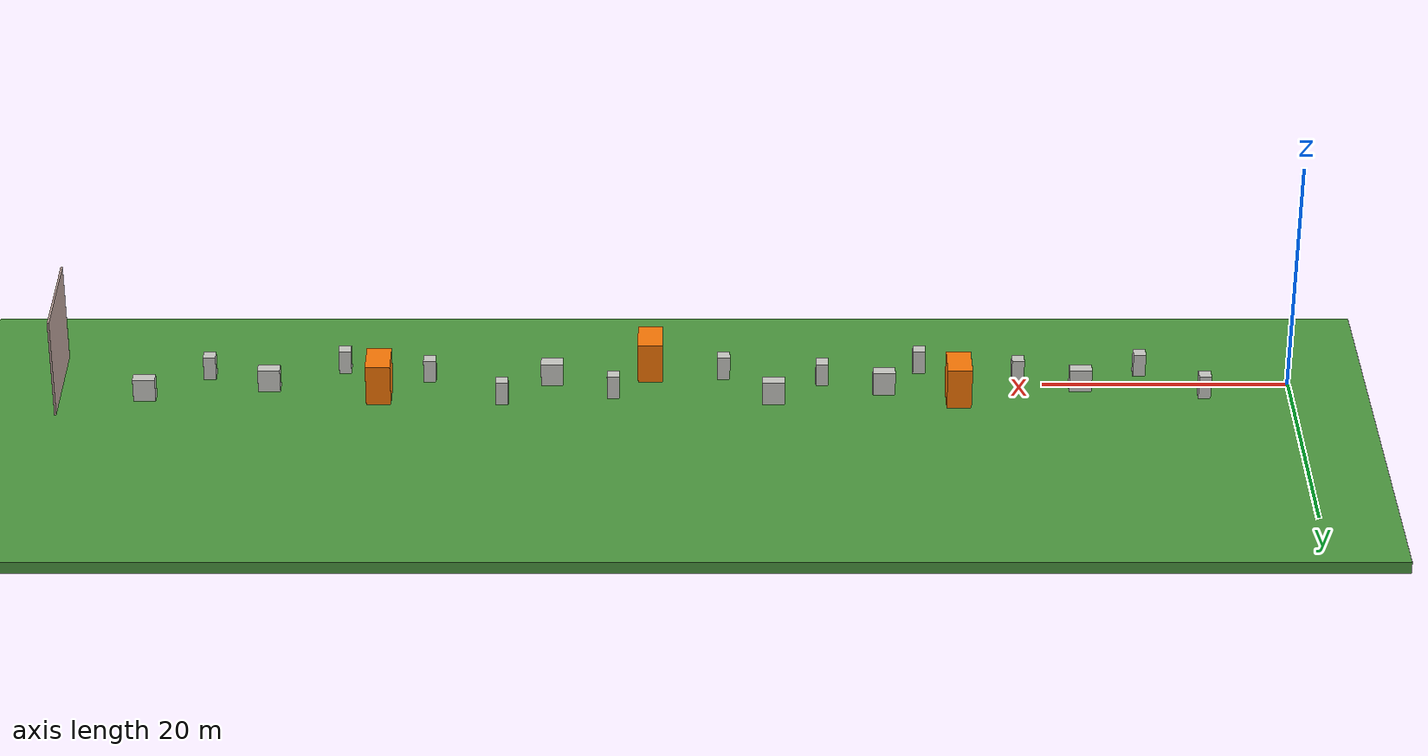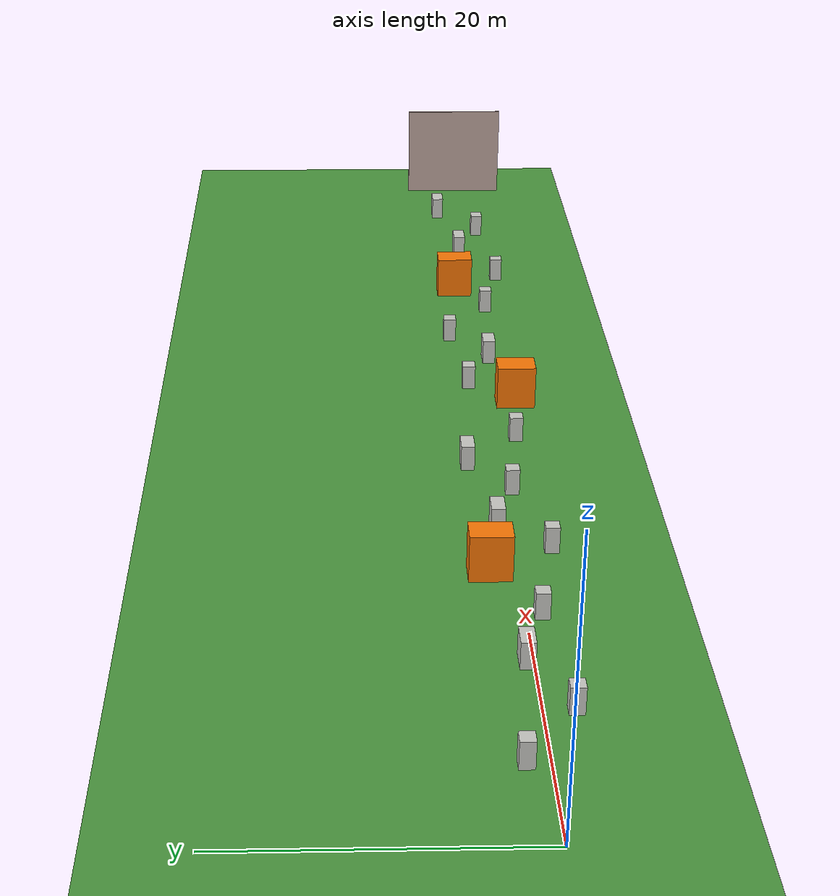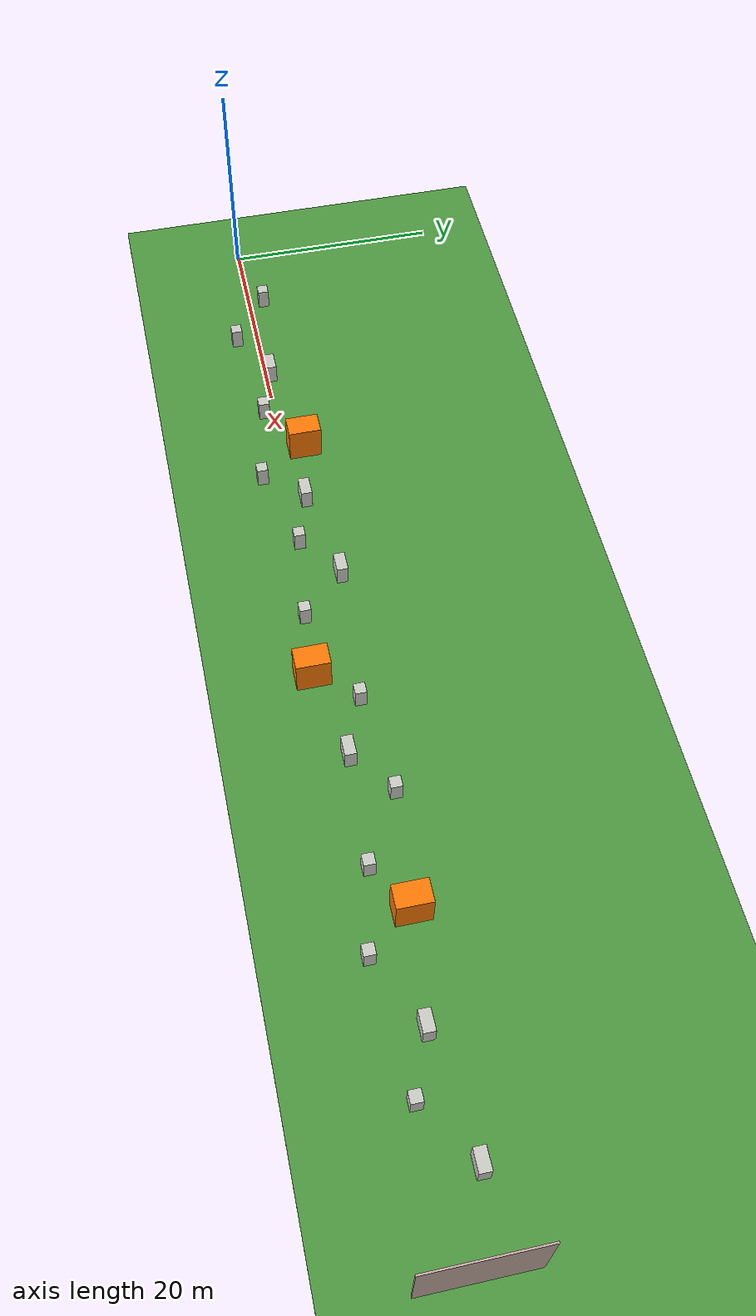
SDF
<sdf version="1.7">
 <world name="default">
  <light name="sun" type="directional">
   <pose>50 0 10 0 -0 0</pose>
   <diffuse>0.8 0.8 0.8 1</diffuse>
   <specular>0.2 0.2 0.2 1</specular>
   <attenuation>
    <range>1000</range>
    <constant>0.9</constant>
    <linear>0.01</linear>
    <quadratic>0.001</quadratic>
   </attenuation>
   <direction>-0.5 0.1 -0.9</direction>
  </light>
  <gravity>0 0 -9.8</gravity>
  <magnetic_field>6e-06 2.3e-05 -4.2e-05</magnetic_field>
  <atmosphere type="adiabatic"/>
  <physics type="ode">
   <max_step_size>0.001</max_step_size>
   <real_time_factor>1</real_time_factor>
   <real_time_update_rate>1000</real_time_update_rate>
  </physics>
  <model name="ground_plane">
   <static>1</static>
   <link name="ground_link">
    <collision name="ground_collision">
     <pose>50 0 -0.5 0 0 0</pose>
     <geometry><box><size>400 400 1.0</size></box></geometry>
     <max_contacts>100</max_contacts>
     <surface>
      <contact><ode><soft_cfm>0</soft_cfm><soft_erp>0.8</soft_erp></ode></contact>
      <bounce><restitution_coefficient>0</restitution_coefficient></bounce>
      <friction><ode><mu>50</mu><mu2>50</mu2></ode></friction>
     </surface>
    </collision>
    <visual name="ground_visual">
     <pose>50 0 -0.5 0 0 0</pose>
     <geometry><box><size>400 400 1.0</size></box></geometry>
     <material>
      <script><uri>file://media/materials/scripts/gazebo.material</uri><name>Gazebo/Grass</name></script>
     </material>
    </visual>
   </link>
  </model>
  <scene><ambient>0.4 0.4 0.4 1</ambient><background>0.7 0.7 0.7 1</background><shadows>1</shadows></scene>
  <model name="tunnel_end_wall">
   <pose>100 0 0 0 0 0</pose>
   <link name="Wall_0">
    <collision name="Wall_0_Collision">
     <geometry><box><size>9.15 0.15 8.5</size></box></geometry>
     <pose>0 0 4.25 0 0 0</pose>
     <max_contacts>50</max_contacts>
     <surface>
      <contact><ode><soft_cfm>0</soft_cfm><soft_erp>0.2</soft_erp></ode></contact>
      <bounce><restitution_coefficient>0</restitution_coefficient></bounce>
      <friction><ode><mu>5</mu><mu2>5</mu2></ode></friction>
     </surface>
    </collision>
    <visual name="Wall_0_Visual">
     <pose>0 0 4.25 0 0 0</pose>
     <geometry><box><size>9.15 0.15 8.5</size></box></geometry>
     <material>
      <script><uri>file://media/materials/scripts/gazebo.material</uri><name>Gazebo/Grey</name></script>
      <ambient>0.76 0.66 0.63 1</ambient>
     </material>
    </visual>
    <pose>0 0 0 0 0 1.5708</pose>
   </link>
   <static>1</static>
  </model>
  <model name="sbox_01">
   <pose>7.0 1.5 0 0 0 0</pose>
   <link name="Wall_0">
    <collision name="c">
     <geometry><box><size>1.0 1.0 2.0</size></box></geometry>
     <pose>0 0 1 0 0 0</pose>
    </collision>
    <visual name="v">
     <pose>0 0 1 0 0 0</pose>
     <geometry><box><size>1.0 1.0 2.0</size></box></geometry>
     <material>
      <script><uri>file://media/materials/scripts/gazebo.material</uri><name>Gazebo/CeilingTiled</name></script>
      <ambient>0.92 0.81 0.62 1</ambient>
     </material>
    </visual>
   </link>
   <static>1</static>
  </model>
  <model name="sbox_02">
   <pose>12.0 -2.0 0 0 0 0</pose>
   <link name="Wall_0">
    <collision name="c">
     <geometry><box><size>1.0 1.0 2.0</size></box></geometry>
     <pose>0 0 1 0 0 0</pose>
    </collision>
    <visual name="v">
     <pose>0 0 1 0 0 0</pose>
     <geometry><box><size>1.0 1.0 2.0</size></box></geometry>
     <material>
      <script><uri>file://media/materials/scripts/gazebo.material</uri><name>Gazebo/CeilingTiled</name></script>
      <ambient>0.92 0.81 0.62 1</ambient>
     </material>
    </visual>
   </link>
   <static>1</static>
  </model>
  <model name="lbox_03">
   <pose>17.0 0.5 0 0 0 0</pose>
   <link name="Wall_0">
    <collision name="c">
     <geometry><box><size>1.8 1.0 2.0</size></box></geometry>
     <pose>0 0 1 0 0 0</pose>
    </collision>
    <visual name="v">
     <pose>0 0 1 0 0 0</pose>
     <geometry><box><size>1.8 1.0 2.0</size></box></geometry>
     <material>
      <script><uri>file://media/materials/scripts/gazebo.material</uri><name>Gazebo/CeilingTiled</name></script>
      <ambient>0.92 0.81 0.62 1</ambient>
     </material>
    </visual>
   </link>
   <static>1</static>
  </model>
  <model name="sbox_04">
   <pose>22.0 -1.0 0 0 0 0</pose>
   <link name="Wall_0">
    <collision name="c">
     <geometry><box><size>1.0 1.0 2.0</size></box></geometry>
     <pose>0 0 1 0 0 0</pose>
    </collision>
    <visual name="v">
     <pose>0 0 1 0 0 0</pose>
     <geometry><box><size>1.0 1.0 2.0</size></box></geometry>
     <material>
      <script><uri>file://media/materials/scripts/gazebo.material</uri><name>Gazebo/CeilingTiled</name></script>
      <ambient>0.92 0.81 0.62 1</ambient>
     </material>
    </visual>
   </link>
   <static>1</static>
  </model>
  <model name="boulder_05">
   <pose>27.0 2.0 0 0 0 0</pose>
   <link name="Wall_0">
    <collision name="c">
     <geometry><box><size>3.0 2.0 3.5</size></box></geometry>
     <pose>0 0 1.75 0 0 0</pose>
    </collision>
    <visual name="v">
     <pose>0 0 1.75 0 0 0</pose>
     <geometry><box><size>3.0 2.0 3.5</size></box></geometry>
     <material>
      <script><uri>file://media/materials/scripts/gazebo.material</uri><name>Gazebo/Grey</name></script>
      <ambient>0.996 0.475 0.02 1</ambient>
     </material>
    </visual>
    <pose>0 0 0 0 0 1.5708</pose>
   </link>
   <static>1</static>
  </model>
  <model name="sbox_06">
   <pose>30.0 -2.5 0 0 0 0</pose>
   <link name="Wall_0">
    <collision name="c">
     <geometry><box><size>1.0 1.0 2.0</size></box></geometry>
     <pose>0 0 1 0 0 0</pose>
    </collision>
    <visual name="v">
     <pose>0 0 1 0 0 0</pose>
     <geometry><box><size>1.0 1.0 2.0</size></box></geometry>
     <material>
      <script><uri>file://media/materials/scripts/gazebo.material</uri><name>Gazebo/CeilingTiled</name></script>
      <ambient>0.92 0.81 0.62 1</ambient>
     </material>
    </visual>
   </link>
   <static>1</static>
  </model>
  <model name="lbox_07">
   <pose>33.0 1.0 0 0 0 0</pose>
   <link name="Wall_0">
    <collision name="c">
     <geometry><box><size>1.8 1.0 2.0</size></box></geometry>
     <pose>0 0 1 0 0 0</pose>
    </collision>
    <visual name="v">
     <pose>0 0 1 0 0 0</pose>
     <geometry><box><size>1.8 1.0 2.0</size></box></geometry>
     <material>
      <script><uri>file://media/materials/scripts/gazebo.material</uri><name>Gazebo/CeilingTiled</name></script>
      <ambient>0.92 0.81 0.62 1</ambient>
     </material>
    </visual>
   </link>
   <static>1</static>
  </model>
  <model name="sbox_08">
   <pose>38.0 -0.5 0 0 0 0</pose>
   <link name="Wall_0">
    <collision name="c">
     <geometry><box><size>1.0 1.0 2.0</size></box></geometry>
     <pose>0 0 1 0 0 0</pose>
    </collision>
    <visual name="v">
     <pose>0 0 1 0 0 0</pose>
     <geometry><box><size>1.0 1.0 2.0</size></box></geometry>
     <material>
      <script><uri>file://media/materials/scripts/gazebo.material</uri><name>Gazebo/CeilingTiled</name></script>
      <ambient>0.92 0.81 0.62 1</ambient>
     </material>
    </visual>
   </link>
   <static>1</static>
  </model>
  <model name="lbox_09">
   <pose>42.0 2.5 0 0 0 0</pose>
   <link name="Wall_0">
    <collision name="c">
     <geometry><box><size>1.8 1.0 2.0</size></box></geometry>
     <pose>0 0 1 0 0 0</pose>
    </collision>
    <visual name="v">
     <pose>0 0 1 0 0 0</pose>
     <geometry><box><size>1.8 1.0 2.0</size></box></geometry>
     <material>
      <script><uri>file://media/materials/scripts/gazebo.material</uri><name>Gazebo/CeilingTiled</name></script>
      <ambient>0.92 0.81 0.62 1</ambient>
     </material>
    </visual>
   </link>
   <static>1</static>
  </model>
  <model name="sbox_10">
   <pose>46.0 -1.5 0 0 0 0</pose>
   <link name="Wall_0">
    <collision name="c">
     <geometry><box><size>1.0 1.0 2.0</size></box></geometry>
     <pose>0 0 1 0 0 0</pose>
    </collision>
    <visual name="v">
     <pose>0 0 1 0 0 0</pose>
     <geometry><box><size>1.0 1.0 2.0</size></box></geometry>
     <material>
      <script><uri>file://media/materials/scripts/gazebo.material</uri><name>Gazebo/CeilingTiled</name></script>
      <ambient>0.92 0.81 0.62 1</ambient>
     </material>
    </visual>
   </link>
   <static>1</static>
  </model>
  <model name="boulder_11">
   <pose>52.0 -2.0 0 0 0 0</pose>
   <link name="Wall_0">
    <collision name="c">
     <geometry><box><size>3.0 2.0 3.5</size></box></geometry>
     <pose>0 0 1.75 0 0 0</pose>
    </collision>
    <visual name="v">
     <pose>0 0 1.75 0 0 0</pose>
     <geometry><box><size>3.0 2.0 3.5</size></box></geometry>
     <material>
      <script><uri>file://media/materials/scripts/gazebo.material</uri><name>Gazebo/Grey</name></script>
      <ambient>0.996 0.475 0.02 1</ambient>
     </material>
    </visual>
    <pose>0 0 0 0 0 1.5708</pose>
   </link>
   <static>1</static>
  </model>
  <model name="sbox_12">
   <pose>55.0 1.5 0 0 0 0</pose>
   <link name="Wall_0">
    <collision name="c">
     <geometry><box><size>1.0 1.0 2.0</size></box></geometry>
     <pose>0 0 1 0 0 0</pose>
    </collision>
    <visual name="v">
     <pose>0 0 1 0 0 0</pose>
     <geometry><box><size>1.0 1.0 2.0</size></box></geometry>
     <material>
      <script><uri>file://media/materials/scripts/gazebo.material</uri><name>Gazebo/CeilingTiled</name></script>
      <ambient>0.92 0.81 0.62 1</ambient>
     </material>
    </visual>
   </link>
   <static>1</static>
  </model>
  <model name="lbox_13">
   <pose>60.0 -0.5 0 0 0 0</pose>
   <link name="Wall_0">
    <collision name="c">
     <geometry><box><size>1.8 1.0 2.0</size></box></geometry>
     <pose>0 0 1 0 0 0</pose>
    </collision>
    <visual name="v">
     <pose>0 0 1 0 0 0</pose>
     <geometry><box><size>1.8 1.0 2.0</size></box></geometry>
     <material>
      <script><uri>file://media/materials/scripts/gazebo.material</uri><name>Gazebo/CeilingTiled</name></script>
      <ambient>0.92 0.81 0.62 1</ambient>
     </material>
    </visual>
   </link>
   <static>1</static>
  </model>
  <model name="sbox_14">
   <pose>64.0 2.5 0 0 0 0</pose>
   <link name="Wall_0">
    <collision name="c">
     <geometry><box><size>1.0 1.0 2.0</size></box></geometry>
     <pose>0 0 1 0 0 0</pose>
    </collision>
    <visual name="v">
     <pose>0 0 1 0 0 0</pose>
     <geometry><box><size>1.0 1.0 2.0</size></box></geometry>
     <material>
      <script><uri>file://media/materials/scripts/gazebo.material</uri><name>Gazebo/CeilingTiled</name></script>
      <ambient>0.92 0.81 0.62 1</ambient>
     </material>
    </visual>
   </link>
   <static>1</static>
  </model>
  <model name="sbox_15">
   <pose>70.0 -1.0 0 0 0 0</pose>
   <link name="Wall_0">
    <collision name="c">
     <geometry><box><size>1.0 1.0 2.0</size></box></geometry>
     <pose>0 0 1 0 0 0</pose>
    </collision>
    <visual name="v">
     <pose>0 0 1 0 0 0</pose>
     <geometry><box><size>1.0 1.0 2.0</size></box></geometry>
     <material>
      <script><uri>file://media/materials/scripts/gazebo.material</uri><name>Gazebo/CeilingTiled</name></script>
      <ambient>0.92 0.81 0.62 1</ambient>
     </material>
    </visual>
   </link>
   <static>1</static>
  </model>
  <model name="boulder_16">
   <pose>74.0 1.5 0 0 0 0</pose>
   <link name="Wall_0">
    <collision name="c">
     <geometry><box><size>3.0 2.0 3.5</size></box></geometry>
     <pose>0 0 1.75 0 0 0</pose>
    </collision>
    <visual name="v">
     <pose>0 0 1.75 0 0 0</pose>
     <geometry><box><size>3.0 2.0 3.5</size></box></geometry>
     <material>
      <script><uri>file://media/materials/scripts/gazebo.material</uri><name>Gazebo/Grey</name></script>
      <ambient>0.996 0.475 0.02 1</ambient>
     </material>
    </visual>
    <pose>0 0 0 0 0 1.5708</pose>
   </link>
   <static>1</static>
  </model>
  <model name="sbox_17">
   <pose>77.0 -2.5 0 0 0 0</pose>
   <link name="Wall_0">
    <collision name="c">
     <geometry><box><size>1.0 1.0 2.0</size></box></geometry>
     <pose>0 0 1 0 0 0</pose>
    </collision>
    <visual name="v">
     <pose>0 0 1 0 0 0</pose>
     <geometry><box><size>1.0 1.0 2.0</size></box></geometry>
     <material>
      <script><uri>file://media/materials/scripts/gazebo.material</uri><name>Gazebo/CeilingTiled</name></script>
      <ambient>0.92 0.81 0.62 1</ambient>
     </material>
    </visual>
   </link>
   <static>1</static>
  </model>
  <model name="lbox_18">
   <pose>83.0 0.5 0 0 0 0</pose>
   <link name="Wall_0">
    <collision name="c">
     <geometry><box><size>1.8 1.0 2.0</size></box></geometry>
     <pose>0 0 1 0 0 0</pose>
    </collision>
    <visual name="v">
     <pose>0 0 1 0 0 0</pose>
     <geometry><box><size>1.8 1.0 2.0</size></box></geometry>
     <material>
      <script><uri>file://media/materials/scripts/gazebo.material</uri><name>Gazebo/CeilingTiled</name></script>
      <ambient>0.92 0.81 0.62 1</ambient>
     </material>
    </visual>
   </link>
   <static>1</static>
  </model>
  <model name="sbox_19">
   <pose>88.0 -1.5 0 0 0 0</pose>
   <link name="Wall_0">
    <collision name="c">
     <geometry><box><size>1.0 1.0 2.0</size></box></geometry>
     <pose>0 0 1 0 0 0</pose>
    </collision>
    <visual name="v">
     <pose>0 0 1 0 0 0</pose>
     <geometry><box><size>1.0 1.0 2.0</size></box></geometry>
     <material>
      <script><uri>file://media/materials/scripts/gazebo.material</uri><name>Gazebo/CeilingTiled</name></script>
      <ambient>0.92 0.81 0.62 1</ambient>
     </material>
    </visual>
   </link>
   <static>1</static>
  </model>
  <model name="lbox_20">
   <pose>93.0 2.0 0 0 0 0</pose>
   <link name="Wall_0">
    <collision name="c">
     <geometry><box><size>1.8 1.0 2.0</size></box></geometry>
     <pose>0 0 1 0 0 0</pose>
    </collision>
    <visual name="v">
     <pose>0 0 1 0 0 0</pose>
     <geometry><box><size>1.8 1.0 2.0</size></box></geometry>
     <material>
      <script><uri>file://media/materials/scripts/gazebo.material</uri><name>Gazebo/CeilingTiled</name></script>
      <ambient>0.92 0.81 0.62 1</ambient>
     </material>
    </visual>
   </link>
   <static>1</static>
  </model>
 </world>
</sdf>
